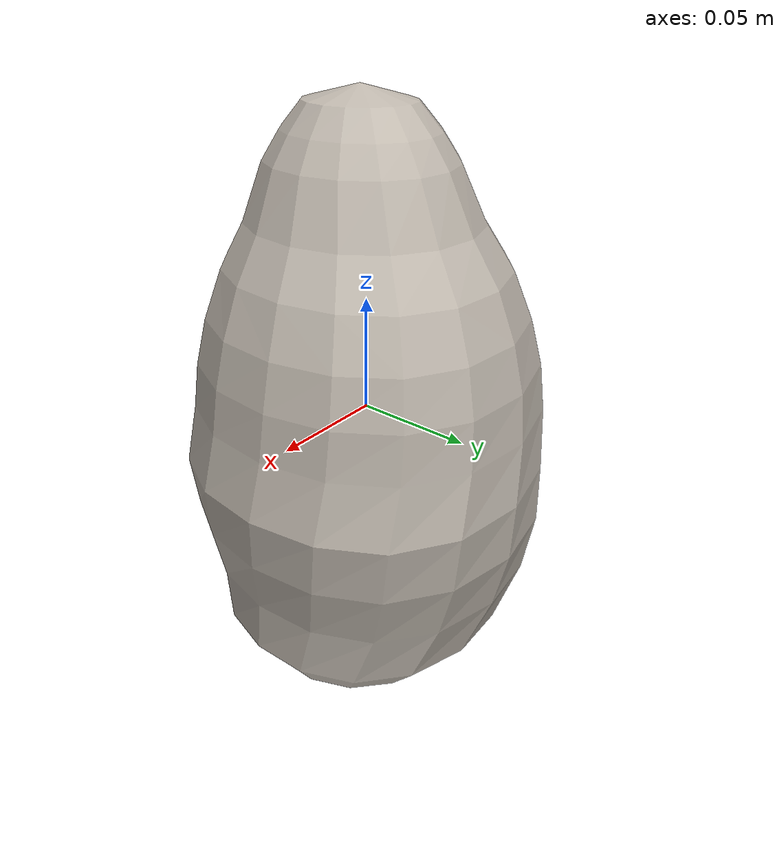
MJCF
<mujoco model="Lettuce_20">
  <compiler autolimits="true" boundmass="0.01" angle="radian"/>
  <default>
    <default class="/">
      <default class="__VISUAL_MJT__">
        <geom contype="0" conaffinity="0" group="0"/>
      </default>
      <default class="__STRUCTURAL_MJT__">
        <geom contype="8" conaffinity="15" group="4" friction="0.90000000000000002 0.90000000000000002 0.001" solref="0.025000000000000001 1" solimp="0.998 0.998 0.001"/>
      </default>
      <default class="__DYNAMIC_MJT__">
        <geom contype="1" conaffinity="15" group="4" friction="0.90000000000000002 0.90000000000000002 0.001" solref="0.025000000000000001 1" solimp="0.998 0.998 0.001"/>
      </default>
    </default>
  </default>
  <asset>
    <texture name="Lettuce2_Mat" type="2d" file="Lettuce2_AlbedoTransparency.png"/>
    <material name="material_Lettuce2_Mat" class="/" texture="Lettuce2_Mat" specular="0.5" shininess="0.5" rgba="1 1 1 1"/>
    <mesh name="Lettuce_20_lettuce_b10" class="/" file="Lettuce_20_lettuce_b10/Lettuce_20_lettuce_b10.obj" scale="1 1 1"/>
  </asset>
  <worldbody>
    <body name="Lettuce_20">
      <joint name="Lettuce_20_free" class="/" type="free" pos="0 0 0" axis="0 0 1" stiffness="0" range="0 0" armature="0" damping="0.10000000000000001" frictionloss="0"/>
      <body name="Lettuce_20_lettuce_b10" pos="-0.00036000000000000002 -0.00055999999999999995 6.0000000000000002e-05" quat="1 0 0 0">
        <geom name="Lettuce_20_lettuce_b10" class="__VISUAL_MJT__" type="mesh" material="material_Lettuce2_Mat" shellinertia="true" mesh="Lettuce_20_lettuce_b10"/>
        <geom name="Lettuce_20_PrimitiveCollider_0" class="__DYNAMIC_MJT__" type="capsule" size="0.075867652893066406 0.036345772445201874" rgba="0 1 0 1" pos="-0.00036336295306682587 0.0006439918652176857 -0.023038707673549652" quat="0.99999999999891198 1.4751396607739272e-06 0 0"/>
        <geom name="Lettuce_20_PrimitiveCollider_1" class="__DYNAMIC_MJT__" type="capsule" size="0.058752570301294327 0.015373643487691879" rgba="0 1 0 1" pos="-0.00035075843334197998 -0.0028138498309999704 0.037706613540649414" quat="0.99999999999891198 1.4751396607739272e-06 0 0"/>
        <geom name="Lettuce_20_PrimitiveCollider_2" class="__DYNAMIC_MJT__" type="capsule" size="0.033674322068691254 0.014402542263269424" rgba="0 1 0 1" pos="-0.0013868575915694237 -0.0007070277351886034 0.08705921471118927" quat="0.99999999999891198 1.4751396607739272e-06 0 0"/>
      </body>
    </body>
  </worldbody>
</mujoco>
